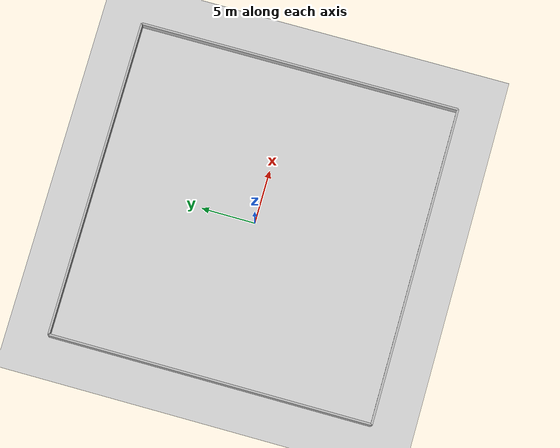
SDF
<?xml version="1.0"?>
<sdf version="1.9">
  <world name="swarm_test_world">
    <physics name="default" type="ode"><max_step_size>0.01</max_step_size><real_time_factor>1.0</real_time_factor></physics>
    <plugin filename="gz-sim-physics-system" name="gz::sim::systems::Physics"/>
    <plugin filename="gz-sim-user-commands-system" name="gz::sim::systems::UserCommands"/>
    <plugin filename="gz-sim-scene-broadcaster-system" name="gz::sim::systems::SceneBroadcaster"/>
    <light name="sun" type="directional"><cast_shadows>true</cast_shadows><pose>0 0 10 0 0 0</pose><diffuse>0.8 0.8 0.8 1</diffuse><direction>-0.3 0.2 -1</direction></light>
    <model name="ground"><static>true</static><link name="link"><collision name="collision"><geometry><plane><normal>0 0 1</normal><size>60 60</size></plane></geometry></collision><visual name="visual"><geometry><plane><normal>0 0 1</normal><size>60 60</size></plane></geometry></visual></link></model>
    <model name="north_wall"><static>true</static><pose>0 15 0.5 0 0 0</pose><link name="link"><collision name="collision"><geometry><box><size>30 0.2 1</size></box></geometry></collision><visual name="visual"><geometry><box><size>30 0.2 1</size></box></geometry></visual></link></model>
    <model name="south_wall"><static>true</static><pose>0 -15 0.5 0 0 0</pose><link name="link"><collision name="collision"><geometry><box><size>30 0.2 1</size></box></geometry></collision><visual name="visual"><geometry><box><size>30 0.2 1</size></box></geometry></visual></link></model>
    <model name="east_wall"><static>true</static><pose>15 0 0.5 0 0 0</pose><link name="link"><collision name="collision"><geometry><box><size>0.2 30 1</size></box></geometry></collision><visual name="visual"><geometry><box><size>0.2 30 1</size></box></geometry></visual></link></model>
    <model name="west_wall"><static>true</static><pose>-15 0 0.5 0 0 0</pose><link name="link"><collision name="collision"><geometry><box><size>0.2 30 1</size></box></geometry></collision><visual name="visual"><geometry><box><size>0.2 30 1</size></box></geometry></visual></link></model>
  </world>
</sdf>
